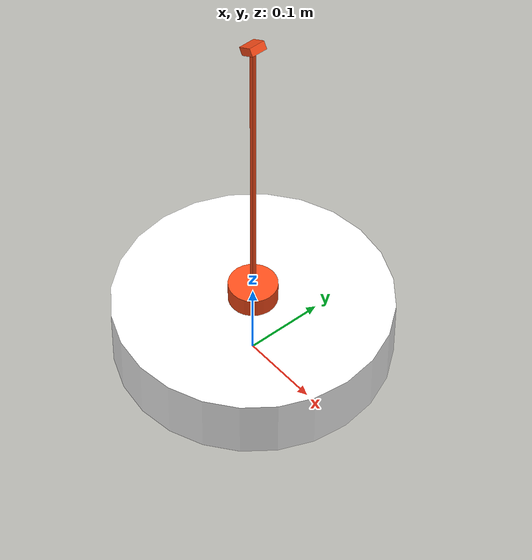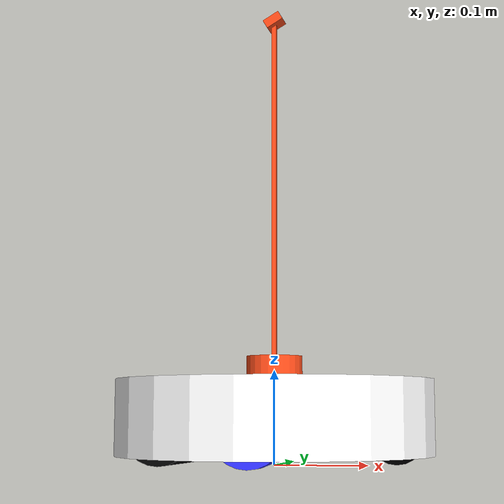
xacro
<?xml version="1.0"?>
<robot xmlns:xacro="http://www.ros.org/wiki/xacro"  name="hubert">

    <!-- robot properties -->

    <xacro:property name="chassis_radius" value="0.17"/>
    <xacro:property name="chassis_height" value="0.08"/>
    <xacro:property name="chassis_mass" value="3.5"/>

    <xacro:property name="chassis_clearance" value="0.01"/>

    <xacro:property name="wheel_radius" value="0.04"/>
    <xacro:property name="wheel_thickness" value="0.02"/>
    <xacro:property name="wheel_mass" value="0.05"/>
    <xacro:property name="wheel_offset_x" value="0"/>
    <xacro:property name="wheel_offset_y" value="0.11"/>
    <xacro:property name="wheel_offset_z" value="${wheel_radius}"/>

    <xacro:property name="clearance_epsilon" value="0.001"/>

    <xacro:property name="caster_wheel_radius" value="0.03"/>
    <xacro:property name="caster_wheel_mass" value="0.01"/>
    <xacro:property name="caster_wheel_offset_x" value="0.13"/>
    <xacro:property name="caster_wheel_offset_z" value="${caster_wheel_radius + clearance_epsilon}"/>

    <xacro:property name="mob_radius" value="0.04"/>
    <xacro:property name="mob_width" value="0.18"/>
    <xacro:property name="mob_mass" value="0.1"/>
    <xacro:property name="mob_offset_x" value="-0.1"/>
    <xacro:property name="mob_offset_z" value="${mob_radius + clearance_epsilon}"/>

    <xacro:property name="camera_stick_thickness" value="0.005"/>
    <xacro:property name="camera_stick_length" value="0.4"/>
    <xacro:property name="camera_stick_mass" value="0.1"/>

    <!-- robot components -->

    <xacro:include filename="inertial_macros.xacro" />

    <xacro:include filename="robot_core.xacro"/>

    <xacro:include filename="lidar.xacro" />

    <xacro:include filename="camera.xacro" />

    <!-- robot control -->

    <xacro:include filename="gazebo_control.xacro"/>

</robot>

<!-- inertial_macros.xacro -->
<robot xmlns:xacro="http://www.ros.org/wiki/xacro" >

    <!-- Specify some standard inertial calculations https://en.wikipedia.org/wiki/List_of_moments_of_inertia -->
    <!-- These make use of xacro's mathematical functionality -->

    <xacro:macro name="inertial_sphere" params="mass radius *origin">
        <inertial>
            <xacro:insert_block name="origin"/>
            <mass value="${mass}" />
            <inertia ixx="${(2/5) * mass * (radius*radius)}" ixy="0.0" ixz="0.0"
                    iyy="${(2/5) * mass * (radius*radius)}" iyz="0.0"
                    izz="${(2/5) * mass * (radius*radius)}" />
        </inertial>
    </xacro:macro>

    <xacro:macro name="inertial_box" params="mass x y z *origin">
        <inertial>
            <xacro:insert_block name="origin"/>
            <mass value="${mass}" />
            <inertia ixx="${(1/12) * mass * (y*y+z*z)}" ixy="0.0" ixz="0.0"
                    iyy="${(1/12) * mass * (x*x+z*z)}" iyz="0.0"
                    izz="${(1/12) * mass * (x*x+y*y)}" />
        </inertial>
    </xacro:macro>

    <xacro:macro name="inertial_cylinder" params="mass length radius *origin">
        <inertial>
            <xacro:insert_block name="origin"/>
            <mass value="${mass}" />
            <inertia ixx="${(1/12) * mass * (3*radius*radius + length*length)}" ixy="0.0" ixz="0.0"
                    iyy="${(1/12) * mass * (3*radius*radius + length*length)}" iyz="0.0"
                    izz="${(1/2) * mass * (radius*radius)}" />
        </inertial>
    </xacro:macro>

</robot>

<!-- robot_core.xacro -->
<robot xmlns:xacro="http://www.ros.org/wiki/xacro" name="hubert">

    <xacro:include filename="inertial_macros.xacro"/>

    <xacro:property name="chassis_radius" value="0.17"/>
    <xacro:property name="chassis_height" value="0.08"/>
    <xacro:property name="chassis_mass" value="3.5"/>

    <xacro:property name="chassis_clearance" value="0.01"/>

    <xacro:property name="wheel_radius" value="0.04"/>
    <xacro:property name="wheel_thickness" value="0.02"/>
    <xacro:property name="wheel_mass" value="0.05"/>
    <xacro:property name="wheel_offset_x" value="0"/>
    <xacro:property name="wheel_offset_y" value="0.11"/>
    <xacro:property name="wheel_offset_z" value="${wheel_radius}"/>

    <xacro:property name="clearance_epsilon" value="0.001"/>

    <xacro:property name="caster_wheel_radius" value="0.03"/>
    <xacro:property name="caster_wheel_mass" value="0.01"/>
    <xacro:property name="caster_wheel_offset_x" value="0.13"/>
    <xacro:property name="caster_wheel_offset_z" value="${caster_wheel_radius + clearance_epsilon}"/>

    <xacro:property name="mob_radius" value="0.04"/>
    <xacro:property name="mob_width" value="0.18"/>
    <xacro:property name="mob_mass" value="0.1"/>
    <xacro:property name="mob_offset_x" value="-0.1"/>
    <xacro:property name="mob_offset_z" value="${mob_radius + clearance_epsilon}"/>

    <material name="white">
        <color rgba="1 1 1 1" />
    </material>

    <material name="orange">
        <color rgba="1 0.3 0.1 1"/>
    </material>

    <material name="blue">
        <color rgba="0.2 0.2 1 1"/>
    </material>

    <material name="black">
        <color rgba="0 0 0 1"/>
    </material>

    <!-- BASE LINK -->

    <link name="base_link">

    </link>

    <!-- BASE_FOOTPRINT LINK -->

    <joint name = "base_footprint_joint" type = "fixed">
        <parent link = "base_link"/>
        <child link = "base_footprint"/>
        <origin xyz = "0 0 0 " rpy = "0 0 0"/>
    </joint>

    <link name = "base_footprint">

    </link>

    <!-- CHASSIS LINK -->

    <joint name="chassis_joint" type="fixed">
        <parent link="base_link"/>
        <child link="chassis"/>
        <origin xyz="0 0 ${chassis_clearance + (chassis_height/2) }"/>
    </joint>

    <link name="chassis">
        <visual>
            <origin xyz="0 0 0"/>
            <geometry>
                <cylinder radius="${chassis_radius}" length="${chassis_height}"/>
            </geometry>
            <material name="white"/>
        </visual>
        <collision>
            <origin xyz="0 0 0."/>
            <geometry>
                <cylinder radius="${chassis_radius}" length="${chassis_height}"/>
            </geometry>
        </collision>
        <xacro:inertial_cylinder mass="${chassis_mass}" radius="${chassis_radius}" length="${chassis_height}">
            <origin xyz="0 0 0" rpy="0 0 0"/>
        </xacro:inertial_cylinder>
    </link>

    <gazebo reference="chassis">
        <material>Gazebo/White</material>
    </gazebo>

    <!-- LEFT WHEEL LINK -->

    <joint name="left_wheel_joint" type="continuous">
        <parent link="base_link"/>
        <child link="left_wheel"/>
        <origin xyz="${wheel_offset_x} ${wheel_offset_y} ${wheel_offset_z}" rpy="-${pi/2} 0 0" />
        <axis xyz="0 0 1"/>
    </joint>

    <link name="left_wheel">
        <visual>
            <geometry>
                <cylinder radius="${wheel_radius}" length="${wheel_thickness}"/>
            </geometry>
            <material name="blue"/>
        </visual>
        <collision>
            <geometry>
                <!-- use sphere for collision to avoid wheel drift in simulation -->
                <sphere radius="${wheel_radius}"/>
            </geometry>
        </collision>
        <xacro:inertial_cylinder mass="${wheel_mass}" radius="${wheel_radius}" length="${wheel_thickness}">
            <origin xyz="0 0 0" rpy="0 0 0"/>
        </xacro:inertial_cylinder>
    </link>

    <gazebo reference="left_wheel">
        <material>Gazebo/Blue</material>
    </gazebo>

    <!-- RIGHT WHEEL LINK -->

    <joint name="right_wheel_joint" type="continuous">
        <parent link="base_link"/>
        <child link="right_wheel"/>
        <origin xyz="${wheel_offset_x} ${-wheel_offset_y} ${wheel_offset_z}" rpy="${pi/2} 0 0" />
        <axis xyz="0 0 -1"/>
    </joint>

    <link name="right_wheel">
        <visual>
            <geometry>
                <cylinder radius="${wheel_radius}" length="${wheel_thickness}"/>
            </geometry>
            <material name="blue"/>
        </visual>
        <collision>
            <geometry>
                <!-- use sphere for collision to avoid wheel drift in simulation -->
                <sphere radius="${wheel_radius}"/>
            </geometry>
        </collision>
        <xacro:inertial_cylinder mass="${wheel_mass}" radius="${wheel_radius}" length="${wheel_thickness}">
            <origin xyz="0 0 0" rpy="0 0 0"/>
        </xacro:inertial_cylinder>
    </link>

    <gazebo reference="right_wheel">
        <material>Gazebo/Blue</material>
    </gazebo>

    <!-- CASTER WHEEL LINK -->

    <joint name="caster_wheel_joint" type="fixed">
        <parent link="base_link"/>
        <child link="caster_wheel"/>
        <origin xyz="${caster_wheel_offset_x} 0  ${caster_wheel_offset_z}"/>
    </joint>

    <link name="caster_wheel">
        <visual>
            <geometry>
                <sphere radius="${caster_wheel_radius}"/>
            </geometry>
            <material name="black"/>
        </visual>
        <collision>
            <geometry>
                <sphere radius="${caster_wheel_radius}"/>
            </geometry>
        </collision>
        <xacro:inertial_sphere mass="${caster_wheel_mass}" radius="${caster_wheel_radius}">
            <origin xyz="0 0 0" rpy="0 0 0"/>
        </xacro:inertial_sphere>
    </link>

    <gazebo reference="caster_wheel">
        <material>Gazebo/Black</material>
        <mu1 value="0.001"/>
        <mu2 value="0.001"/>
    </gazebo>

    <!-- MOB -->

    <joint name="mob_joint" type="fixed">
        <parent link="base_link"/>
        <child link="mob"/>
        <origin xyz="${mob_offset_x} 0 ${mob_offset_z}" rpy="${pi/2} 0 0"/>
    </joint>

    <link name="mob">
        <visual>
            <geometry>
                <cylinder radius="${mob_radius}" length="${mob_width}"/>
            </geometry>
            <material name="black"/>
        </visual>
        <collision>
            <geometry>
                <cylinder radius="${mob_radius}" length="${mob_width}"/>
            </geometry>
        </collision>
        <xacro:inertial_cylinder mass="${mob_mass}" radius="${mob_radius}" length="${mob_width}">
            <origin xyz="0 0 0" rpy="0 0 0"/>
        </xacro:inertial_cylinder>
    </link>

    <gazebo reference="mob">
        <material>Gazebo/Grey</material>
        <mu1 value="0.001"/>
        <mu2 value="0.001"/>
    </gazebo>

</robot>

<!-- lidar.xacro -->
<robot xmlns:xacro="http://www.ros.org/wiki/xacro"  name="hubert">

    <joint name="lidar_joint" type ="fixed">
        <parent link="chassis"/>
        <child link="lidar_frame"/>
        <origin xyz = "0 0 0.04"/>
    </joint>

    <link name="lidar_frame">
        <visual>
            <geometry>
                <cylinder radius="0.03" length="0.05"/>
            </geometry>
            <material name="orange"/>
        </visual>
        <collision>
            <geometry>
                <cylinder radius="0.03" length="0.05"/>
            </geometry>
        </collision>
        <xacro:inertial_cylinder mass="0.01" radius="0.03" length="0.05">
            <origin xyz="0 0 0" rpy="0 0 0"/>
        </xacro:inertial_cylinder>
    </link>

    <gazebo reference="lidar_frame">
        <material>Gazebo/Orange</material>
        <sensor name = "lidar" type ="ray">
            <pose> 0 0 0 0 0 0 </pose>
            <visualize>false</visualize>
            <update_rate>10</update_rate>
            <ray>
                <scan>
                    <horizontal>
                        <samples>360</samples>
                        <resolution>1</resolution>
                        <min_angle>-3.1415</min_angle>
                        <max_angle>3.1415</max_angle>
                    </horizontal>
                </scan>
                <range>
                    <min>0.2</min>
                    <max>12</max>
                </range>
            </ray>
            <plugin name = "lidar_controller" filename = "libgazebo_ros_ray_sensor.so">
                <ros>
                    <argument>~/out:=scan</argument>
                </ros>
                <output_type>sensor_msgs/LaserScan</output_type>
                <frame_name>lidar_frame</frame_name>
            </plugin>
        </sensor>
    </gazebo>

</robot>

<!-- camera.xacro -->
<robot xmlns:xacro="http://www.ros.org/wiki/xacro"  name="hubert">

    <joint name="camera_stick_joint" type ="fixed">
        <parent link="chassis"/>
        <child link="camera_stick_link"/>
        <origin xyz = "0 0 ${chassis_height/2}" rpy = "0 ${-pi/2} 0" />
    </joint>

    <link name="camera_stick_link">
        <visual>
            <origin xyz = "${camera_stick_length/2}  0 0" rpy = "0 0 0" />
            <geometry>
                <box size = "${camera_stick_length} ${camera_stick_thickness} ${camera_stick_thickness}"/>
            </geometry>
            <material name="orange"/>
        </visual>
    </link>

    <joint name="camera_joint" type ="fixed">
        <parent link="camera_stick_link"/>
        <child link="camera_link"/>
        <origin xyz = "${camera_stick_length} 0 0" rpy = "0 ${5*pi/6} 0" />
    </joint>

    <link name="camera_link">
        <visual>
            <geometry>
                <box size = "0.01 0.02 0.02"/>
            </geometry>
            <material name="orange"/>
        </visual>
    </link>

    <joint name="camera_optical_joint" type ="fixed">
        <parent link="camera_link"/>
        <child link="camera_link_optical"/>
        <origin xyz = "0 0 0" rpy = "${-pi/2} 0 ${-pi/2}" />
    </joint>

    <link name="camera_link_optical"></link>

    <gazebo reference="camera_link">
        <material>Gazebo/Orange</material>
        <sensor name = "camera" type ="depth">
            <pose> 0 0 0 0 0 0 </pose>
            <visualize>true</visualize>
            <update_rate>10</update_rate>
            <camera>
                <horizontal_fov>1.25</horizontal_fov>
                <vertical_fov>1.25</vertical_fov>
                <image>
                    <fromat>B8G8R8</fromat>
                    <width>640</width>
                    <height>480</height>
                </image>
                <clip>
                    <near>0.05</near>
                    <far>8.0</far>
                </clip>
            </camera>
            <plugin name = "camera_controller" filename = "libgazebo_ros_camera.so">
                <frame_name>camera_link_optical</frame_name>
            </plugin>
        </sensor>
    </gazebo>

</robot>
